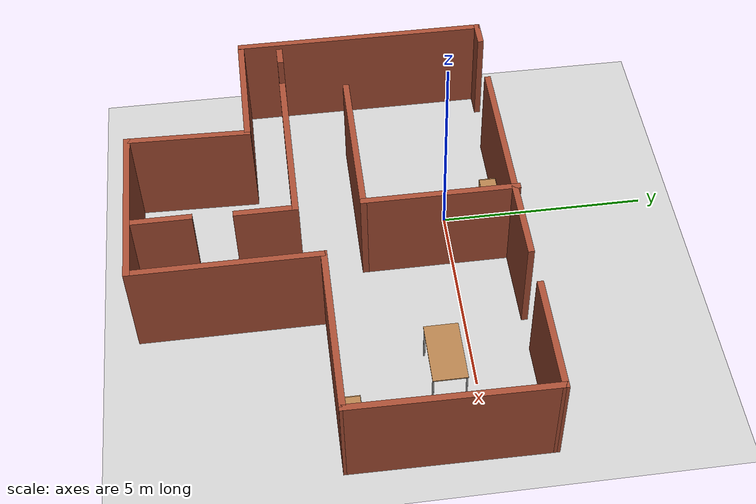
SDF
<sdf version="1.7">
 <world name="default">
  <light name="sun" type="directional">
   <pose>0 0 10 0 -0 0</pose>
   <diffuse>0.8 0.8 0.8 1</diffuse>
   <specular>0.2 0.2 0.2 1</specular>
   <attenuation>
    <range>1000</range>
    <constant>0.9</constant>
    <linear>0.01</linear>
    <quadratic>0.001</quadratic>
   </attenuation>
   <direction>-0.5 0.1 -0.9</direction>
   <spot><inner_angle>0</inner_angle><outer_angle>0</outer_angle><falloff>0</falloff></spot>
  </light>
  <model name="ground_plane">
   <static>1</static>
   <link name="link">
    <collision name="collision">
     <geometry><plane><normal>0 0 1</normal><size>100 100</size></plane></geometry>
     <surface>
      <contact><collide_bitmask>65535</collide_bitmask></contact>
      <friction><ode><mu>100</mu><mu2>50</mu2></ode></friction>
     </surface>
    </collision>
    <visual name="visual">
     <cast_shadows>0</cast_shadows>
     <geometry><plane><normal>0 0 1</normal><size>100 100</size></plane></geometry>
     <material>
      <script><uri>file://media/materials/scripts/gazebo.material</uri><name>Gazebo/Grey</name></script>
     </material>
    </visual>
   </link>
  </model>
  <gravity>0 0 -9.8</gravity>
  <magnetic_field>6e-06 2.3e-05 -4.2e-05</magnetic_field>
  <atmosphere type="adiabatic"/>
  <physics type="ode">
   <max_step_size>0.001</max_step_size>
   <real_time_factor>1</real_time_factor>
   <real_time_update_rate>1000</real_time_update_rate>
  </physics>
  <scene><ambient>0.4 0.4 0.4 1</ambient><background>0.7 0.7 0.7 1</background><shadows>1</shadows></scene>
  <audio><device>default</device></audio>
  <spherical_coordinates>
   <surface_model>EARTH_WGS84</surface_model>
   <latitude_deg>0</latitude_deg>
   <longitude_deg>0</longitude_deg>
   <elevation>0</elevation>
   <heading_deg>0</heading_deg>
  </spherical_coordinates>
  <model name="my_floor">
   <pose>1.30399 -3.02242 0 0 -0 0</pose>
   <link name="Wall_14">
    <collision name="Wall_14_Collision">
     <geometry><box><size>3 0.15 2.5</size></box></geometry>
     <pose>0 0 1.25 0 -0 0</pose>
    </collision>
    <visual name="Wall_14_Visual">
     <pose>0 0 1.25 0 -0 0</pose>
     <geometry><box><size>3 0.15 2.5</size></box></geometry>
     <material>
      <script><uri>file://media/materials/scripts/gazebo.material</uri><name>Gazebo/Bricks</name></script>
      <ambient>1 1 1 1</ambient>
     </material>
     <meta><layer>0</layer></meta>
    </visual>
    <pose>-4.04561 -1.61678 0 0 -0 0</pose>
   </link>
   <link name="Wall_15">
    <collision name="Wall_15_Collision">
     <geometry><box><size>3.02844 0.15 2.5</size></box></geometry>
     <pose>0 0 1.25 0 -0 0</pose>
    </collision>
    <visual name="Wall_15_Visual">
     <pose>0 0 1.25 0 -0 0</pose>
     <geometry><box><size>3.02844 0.15 2.5</size></box></geometry>
     <material>
      <script><uri>file://media/materials/scripts/gazebo.material</uri><name>Gazebo/Bricks</name></script>
      <ambient>1 1 1 1</ambient>
     </material>
     <meta><layer>0</layer></meta>
    </visual>
    <pose>-2.5797 -3.05542 0 0 -0 -1.59923</pose>
   </link>
   <link name="Wall_16">
    <collision name="Wall_16_Collision">
     <geometry><box><size>4.25 0.15 2.5</size></box></geometry>
     <pose>0 0 1.25 0 -0 0</pose>
    </collision>
    <visual name="Wall_16_Visual">
     <pose>0 0 1.25 0 -0 0</pose>
     <geometry><box><size>4.25 0.15 2.5</size></box></geometry>
     <material>
      <script><uri>file://media/materials/scripts/gazebo.material</uri><name>Gazebo/Bricks</name></script>
      <ambient>1 1 1 1</ambient>
     </material>
     <meta><layer>0</layer></meta>
    </visual>
    <pose>-0.570615 -4.49406 0 0 -0 0</pose>
   </link>
   <link name="Wall_17">
    <collision name="Wall_17_Collision">
     <geometry><box><size>4.5 0.15 2.5</size></box></geometry>
     <pose>0 0 1.25 0 -0 0</pose>
    </collision>
    <visual name="Wall_17_Visual">
     <pose>0 0 1.25 0 -0 0</pose>
     <geometry><box><size>4.5 0.15 2.5</size></box></geometry>
     <material>
      <script><uri>file://media/materials/scripts/gazebo.material</uri><name>Gazebo/Bricks</name></script>
      <ambient>1 1 1 1</ambient>
     </material>
     <meta><layer>0</layer></meta>
    </visual>
    <pose>1.47938 -2.31906 0 0 -0 1.5708</pose>
   </link>
   <link name="Wall_18">
    <collision name="Wall_18_Collision">
     <geometry><box><size>4.25 0.15 2.5</size></box></geometry>
     <pose>0 0 1.25 0 -0 0</pose>
    </collision>
    <visual name="Wall_18_Visual">
     <pose>0 0 1.25 0 -0 0</pose>
     <geometry><box><size>4.25 0.15 2.5</size></box></geometry>
     <material>
      <script><uri>file://media/materials/scripts/gazebo.material</uri><name>Gazebo/Bricks</name></script>
      <ambient>1 1 1 1</ambient>
     </material>
     <meta><layer>0</layer></meta>
    </visual>
    <pose>3.52938 -0.144063 0 0 -0 0</pose>
   </link>
   <link name="Wall_19">
    <collision name="Wall_19_Collision">
     <geometry><box><size>4.75027 0.15 2.5</size></box></geometry>
     <pose>0 0 1.25 0 -0 0</pose>
    </collision>
    <visual name="Wall_19_Visual">
     <pose>0 0 1.25 0 -0 0</pose>
     <geometry><box><size>4.75027 0.15 2.5</size></box></geometry>
     <material>
      <script><uri>file://media/materials/scripts/gazebo.material</uri><name>Gazebo/Bricks</name></script>
      <ambient>1 1 1 1</ambient>
     </material>
     <meta><layer>0</layer></meta>
    </visual>
    <pose>5.60438 2.15594 0 0 -0 1.55993</pose>
   </link>
   <link name="Wall_23">
    <collision name="Wall_23_Collision">
     <geometry><box><size>3.75 0.15 2.5</size></box></geometry>
     <pose>0 0 1.25 0 -0 0</pose>
    </collision>
    <visual name="Wall_23_Visual">
     <pose>0 0 1.25 0 -0 0</pose>
     <geometry><box><size>3.75 0.15 2.5</size></box></geometry>
     <material>
      <script><uri>file://media/materials/scripts/gazebo.material</uri><name>Gazebo/Bricks</name></script>
      <ambient>1 1 1 1</ambient>
     </material>
     <meta><layer>0</layer></meta>
    </visual>
    <pose>0.037812 2.69617 0 0 -0 -1.5708</pose>
   </link>
   <link name="Wall_24">
    <collision name="Wall_24_Collision">
     <geometry><box><size>4 0.15 2.5</size></box></geometry>
     <pose>0 0 1.25 0 -0 0</pose>
    </collision>
    <visual name="Wall_24_Visual">
     <pose>0 0 1.25 0 -0 0</pose>
     <geometry><box><size>4 0.15 2.5</size></box></geometry>
     <material>
      <script><uri>file://media/materials/scripts/gazebo.material</uri><name>Gazebo/Bricks</name></script>
      <ambient>1 1 1 1</ambient>
     </material>
     <meta><layer>0</layer></meta>
    </visual>
    <pose>-1.88719 0.896165 0 0 -0 3.14159</pose>
   </link>
   <link name="Wall_26">
    <collision name="Wall_26_Collision">
     <geometry><box><size>0.5 0.15 2.5</size></box></geometry>
     <pose>0 0 1.25 0 -0 0</pose>
    </collision>
    <visual name="Wall_26_Visual">
     <pose>0 0 1.25 0 -0 0</pose>
     <geometry><box><size>0.5 0.15 2.5</size></box></geometry>
     <material>
      <script><uri>file://media/materials/scripts/gazebo.material</uri><name>Gazebo/Bricks</name></script>
      <ambient>1 1 1 1</ambient>
     </material>
     <meta><layer>0</layer></meta>
    </visual>
    <pose>-5.16558 -0.65291 0 0 -0 3.14159</pose>
   </link>
   <link name="Wall_34">
    <collision name="Wall_34_Collision">
     <geometry><box><size>1.5 0.15 2.5</size></box></geometry>
     <pose>0 0 1.25 0 -0 0</pose>
    </collision>
    <visual name="Wall_34_Visual">
     <pose>0 0 1.25 0 -0 0</pose>
     <geometry><box><size>1.5 0.15 2.5</size></box></geometry>
     <material>
      <script><uri>file://media/materials/scripts/gazebo.material</uri><name>Gazebo/Bricks</name></script>
      <ambient>1 1 1 1</ambient>
     </material>
     <meta><layer>0</layer></meta>
    </visual>
    <pose>-0.002415 -3.75926 0 0 -0 1.5708</pose>
   </link>
   <link name="Wall_44">
    <collision name="Wall_44_Collision">
     <geometry><box><size>6.25 0.15 2.5</size></box></geometry>
     <pose>0 0 1.25 0 -0 0</pose>
    </collision>
    <visual name="Wall_44_Visual">
     <pose>0 0 1.25 0 -0 0</pose>
     <geometry><box><size>6.25 0.15 2.5</size></box></geometry>
     <material>
      <script><uri>file://media/materials/scripts/gazebo.material</uri><name>Gazebo/Bricks</name></script>
      <ambient>1 1 1 1</ambient>
     </material>
     <meta><layer>0</layer></meta>
    </visual>
    <pose>-5.62988 1.43765 0 0 -0 -1.5708</pose>
   </link>
   <link name="Wall_47">
    <collision name="Wall_47_Collision">
     <geometry><box><size>5.75 0.15 2.5</size></box></geometry>
     <pose>0 0 1.25 0 -0 0</pose>
    </collision>
    <visual name="Wall_47_Visual">
     <pose>0 0 1.25 0 -0 0</pose>
     <geometry><box><size>5.75 0.15 2.5</size></box></geometry>
     <material>
      <script><uri>file://media/materials/scripts/gazebo.material</uri><name>Gazebo/Bricks</name></script>
      <ambient>1 1 1 1</ambient>
     </material>
     <meta><layer>0</layer></meta>
    </visual>
    <pose>-0.832237 4.43534 0 0 -0 0</pose>
   </link>
   <link name="Wall_49">
    <collision name="Wall_49_Collision">
     <geometry><box><size>2.81046 0.15 2.5</size></box></geometry>
     <pose>0 0 1.25 0 -0 0</pose>
    </collision>
    <visual name="Wall_49_Visual">
     <pose>0 0 1.25 0 -0 0</pose>
     <geometry><box><size>2.81046 0.15 2.5</size></box></geometry>
     <material>
      <script><uri>file://media/materials/scripts/gazebo.material</uri><name>Gazebo/Bricks</name></script>
      <ambient>1 1 1 1</ambient>
     </material>
     <meta><layer>0</layer></meta>
    </visual>
    <pose>4.29916 4.45928 0 0 -0 -0.00251</pose>
   </link>
   <link name="Wall_51">
    <collision name="Wall_51_Collision">
     <geometry><box><size>0.674655 0.15 2.5</size></box></geometry>
     <pose>0 0 1.25 0 -0 0</pose>
    </collision>
    <visual name="Wall_51_Visual">
     <pose>0 0 1.25 0 -0 0</pose>
     <geometry><box><size>0.674655 0.15 2.5</size></box></geometry>
     <material>
      <script><uri>file://media/materials/scripts/gazebo.material</uri><name>Gazebo/Bricks</name></script>
      <ambient>1 1 1 1</ambient>
     </material>
     <meta><layer>0</layer></meta>
    </visual>
    <pose>-5.36755 4.48877 0 0 -0 -3.13732</pose>
   </link>
   <link name="Wall_53">
    <collision name="Wall_53_Collision">
     <geometry><box><size>4.25 0.15 2.5</size></box></geometry>
     <pose>0 0 1.25 0 -0 0</pose>
    </collision>
    <visual name="Wall_53_Visual">
     <pose>0 0 1.25 0 -0 0</pose>
     <geometry><box><size>4.25 0.15 2.5</size></box></geometry>
     <material>
      <script><uri>file://media/materials/scripts/gazebo.material</uri><name>Gazebo/Bricks</name></script>
      <ambient>1 1 1 1</ambient>
     </material>
     <meta><layer>0</layer></meta>
    </visual>
    <pose>-2.01868 -0.665566 0 0 -0 0</pose>
   </link>
   <link name="Wall_54">
    <collision name="Wall_54_Collision">
     <geometry><box><size>1.5 0.15 2.5</size></box></geometry>
     <pose>0 0 1.25 0 -0 0</pose>
    </collision>
    <visual name="Wall_54_Visual">
     <pose>0 0 1.25 0 -0 0</pose>
     <geometry><box><size>1.5 0.15 2.5</size></box></geometry>
     <material>
      <script><uri>file://media/materials/scripts/gazebo.material</uri><name>Gazebo/Bricks</name></script>
      <ambient>1 1 1 1</ambient>
     </material>
     <meta><layer>0</layer></meta>
    </visual>
    <pose>0.031322 -1.34057 0 0 -0 -1.5708</pose>
   </link>
   <static>1</static>
  </model>
  <model name="bookshelf">
   <static>1</static>
   <link name="link">
    <inertial><mass>1</mass></inertial>
    <collision name="back">
     <pose>0 0.005 0.6 0 -0 0</pose>
     <geometry><box><size>0.9 0.01 1.2</size></box></geometry>
    </collision>
    <visual name="visual1">
     <pose>0 0.005 0.6 0 -0 0</pose>
     <geometry><box><size>0.9 0.01 1.2</size></box></geometry>
     <material>
      <script><uri>file://media/materials/scripts/gazebo.material</uri><name>Gazebo/Wood</name></script>
     </material>
    </visual>
    <collision name="left_side">
     <pose>0.45 -0.195 0.6 0 -0 0</pose>
     <geometry><box><size>0.02 0.4 1.2</size></box></geometry>
    </collision>
    <visual name="visual2">
     <pose>0.45 -0.195 0.6 0 -0 0</pose>
     <geometry><box><size>0.02 0.4 1.2</size></box></geometry>
     <material>
      <script><uri>file://media/materials/scripts/gazebo.material</uri><name>Gazebo/Wood</name></script>
     </material>
    </visual>
    <collision name="right_side">
     <pose>-0.45 -0.195 0.6 0 -0 0</pose>
     <geometry><box><size>0.02 0.4 1.2</size></box></geometry>
    </collision>
    <visual name="visual3">
     <pose>-0.45 -0.195 0.6 0 -0 0</pose>
     <geometry><box><size>0.02 0.4 1.2</size></box></geometry>
     <material>
      <script><uri>file://media/materials/scripts/gazebo.material</uri><name>Gazebo/Wood</name></script>
     </material>
    </visual>
    <collision name="bottom">
     <pose>0 -0.195 0.03 0 -0 0</pose>
     <geometry><box><size>0.88 0.4 0.06</size></box></geometry>
    </collision>
    <visual name="visual4">
     <pose>0 -0.195 0.03 0 -0 0</pose>
     <geometry><box><size>0.88 0.4 0.06</size></box></geometry>
     <material>
      <script><uri>file://media/materials/scripts/gazebo.material</uri><name>Gazebo/Wood</name></script>
     </material>
    </visual>
    <collision name="top">
     <pose>0 -0.195 1.19 0 -0 0</pose>
     <geometry><box><size>0.88 0.4 0.02</size></box></geometry>
    </collision>
    <visual name="visual5">
     <pose>0 -0.195 1.19 0 -0 0</pose>
     <geometry><box><size>0.88 0.4 0.02</size></box></geometry>
     <material>
      <script><uri>file://media/materials/scripts/gazebo.material</uri><name>Gazebo/Wood</name></script>
     </material>
    </visual>
    <collision name="low_shelf">
     <pose>0 -0.195 0.43 0 -0 0</pose>
     <geometry><box><size>0.88 0.4 0.02</size></box></geometry>
    </collision>
    <visual name="visual6">
     <pose>0 -0.195 0.43 0 -0 0</pose>
     <geometry><box><size>0.88 0.4 0.02</size></box></geometry>
     <material>
      <script><uri>file://media/materials/scripts/gazebo.material</uri><name>Gazebo/Wood</name></script>
     </material>
    </visual>
    <collision name="high_shelf">
     <pose>0 -0.195 0.8 0 -0 0</pose>
     <geometry><box><size>0.88 0.4 0.02</size></box></geometry>
    </collision>
    <visual name="visual7">
     <pose>0 -0.195 0.8 0 -0 0</pose>
     <geometry><box><size>0.88 0.4 0.02</size></box></geometry>
     <material>
      <script><uri>file://media/materials/scripts/gazebo.material</uri><name>Gazebo/Wood</name></script>
     </material>
    </visual>
   </link>
   <pose>0.306951 1.26753 0 0 -0 0</pose>
  </model>
  <model name="bookshelf_0">
   <static>1</static>
   <link name="link">
    <inertial><mass>1</mass></inertial>
    <collision name="back">
     <pose>0 0.005 0.6 0 -0 0</pose>
     <geometry><box><size>0.9 0.01 1.2</size></box></geometry>
    </collision>
    <visual name="visual1">
     <pose>0 0.005 0.6 0 -0 0</pose>
     <geometry><box><size>0.9 0.01 1.2</size></box></geometry>
     <material>
      <script><uri>file://media/materials/scripts/gazebo.material</uri><name>Gazebo/Wood</name></script>
     </material>
    </visual>
    <collision name="left_side">
     <pose>0.45 -0.195 0.6 0 -0 0</pose>
     <geometry><box><size>0.02 0.4 1.2</size></box></geometry>
    </collision>
    <visual name="visual2">
     <pose>0.45 -0.195 0.6 0 -0 0</pose>
     <geometry><box><size>0.02 0.4 1.2</size></box></geometry>
     <material>
      <script><uri>file://media/materials/scripts/gazebo.material</uri><name>Gazebo/Wood</name></script>
     </material>
    </visual>
    <collision name="right_side">
     <pose>-0.45 -0.195 0.6 0 -0 0</pose>
     <geometry><box><size>0.02 0.4 1.2</size></box></geometry>
    </collision>
    <visual name="visual3">
     <pose>-0.45 -0.195 0.6 0 -0 0</pose>
     <geometry><box><size>0.02 0.4 1.2</size></box></geometry>
     <material>
      <script><uri>file://media/materials/scripts/gazebo.material</uri><name>Gazebo/Wood</name></script>
     </material>
    </visual>
    <collision name="bottom">
     <pose>0 -0.195 0.03 0 -0 0</pose>
     <geometry><box><size>0.88 0.4 0.06</size></box></geometry>
    </collision>
    <visual name="visual4">
     <pose>0 -0.195 0.03 0 -0 0</pose>
     <geometry><box><size>0.88 0.4 0.06</size></box></geometry>
     <material>
      <script><uri>file://media/materials/scripts/gazebo.material</uri><name>Gazebo/Wood</name></script>
     </material>
    </visual>
    <collision name="top">
     <pose>0 -0.195 1.19 0 -0 0</pose>
     <geometry><box><size>0.88 0.4 0.02</size></box></geometry>
    </collision>
    <visual name="visual5">
     <pose>0 -0.195 1.19 0 -0 0</pose>
     <geometry><box><size>0.88 0.4 0.02</size></box></geometry>
     <material>
      <script><uri>file://media/materials/scripts/gazebo.material</uri><name>Gazebo/Wood</name></script>
     </material>
    </visual>
    <collision name="low_shelf">
     <pose>0 -0.195 0.43 0 -0 0</pose>
     <geometry><box><size>0.88 0.4 0.02</size></box></geometry>
    </collision>
    <visual name="visual6">
     <pose>0 -0.195 0.43 0 -0 0</pose>
     <geometry><box><size>0.88 0.4 0.02</size></box></geometry>
     <material>
      <script><uri>file://media/materials/scripts/gazebo.material</uri><name>Gazebo/Wood</name></script>
     </material>
    </visual>
    <collision name="high_shelf">
     <pose>0 -0.195 0.8 0 -0 0</pose>
     <geometry><box><size>0.88 0.4 0.02</size></box></geometry>
    </collision>
    <visual name="visual7">
     <pose>0 -0.195 0.8 0 -0 0</pose>
     <geometry><box><size>0.88 0.4 0.02</size></box></geometry>
     <material>
      <script><uri>file://media/materials/scripts/gazebo.material</uri><name>Gazebo/Wood</name></script>
     </material>
    </visual>
   </link>
   <pose>6.22035 -2.7202 0 0 -0 0</pose>
  </model>
  <model name="table">
   <static>1</static>
   <link name="link">
    <collision name="surface">
     <pose>0 0 1 0 -0 0</pose>
     <geometry><box><size>1.5 0.8 0.03</size></box></geometry>
     <surface><friction><ode><mu>0.6</mu><mu2>0.6</mu2></ode></friction></surface>
    </collision>
    <visual name="visual1">
     <pose>0 0 1 0 -0 0</pose>
     <geometry><box><size>1.5 0.8 0.03</size></box></geometry>
     <material>
      <script><uri>file://media/materials/scripts/gazebo.material</uri><name>Gazebo/Wood</name></script>
     </material>
    </visual>
    <collision name="front_left_leg">
     <pose>0.68 0.38 0.5 0 -0 0</pose>
     <geometry><cylinder><radius>0.02</radius><length>1</length></cylinder></geometry>
    </collision>
    <visual name="front_left_leg">
     <pose>0.68 0.38 0.5 0 -0 0</pose>
     <geometry><cylinder><radius>0.02</radius><length>1</length></cylinder></geometry>
     <material>
      <script><uri>file://media/materials/scripts/gazebo.material</uri><name>Gazebo/Grey</name></script>
     </material>
    </visual>
    <collision name="front_right_leg">
     <pose>0.68 -0.38 0.5 0 -0 0</pose>
     <geometry><cylinder><radius>0.02</radius><length>1</length></cylinder></geometry>
    </collision>
    <visual name="front_right_leg">
     <pose>0.68 -0.38 0.5 0 -0 0</pose>
     <geometry><cylinder><radius>0.02</radius><length>1</length></cylinder></geometry>
     <material>
      <script><uri>file://media/materials/scripts/gazebo.material</uri><name>Gazebo/Grey</name></script>
     </material>
    </visual>
    <collision name="back_right_leg">
     <pose>-0.68 -0.38 0.5 0 -0 0</pose>
     <geometry><cylinder><radius>0.02</radius><length>1</length></cylinder></geometry>
    </collision>
    <visual name="back_right_leg">
     <pose>-0.68 -0.38 0.5 0 -0 0</pose>
     <geometry><cylinder><radius>0.02</radius><length>1</length></cylinder></geometry>
     <material>
      <script><uri>file://media/materials/scripts/gazebo.material</uri><name>Gazebo/Grey</name></script>
     </material>
    </visual>
    <collision name="back_left_leg">
     <pose>-0.68 0.38 0.5 0 -0 0</pose>
     <geometry><cylinder><radius>0.02</radius><length>1</length></cylinder></geometry>
    </collision>
    <visual name="back_left_leg">
     <pose>-0.68 0.38 0.5 0 -0 0</pose>
     <geometry><cylinder><radius>0.02</radius><length>1</length></cylinder></geometry>
     <material>
      <script><uri>file://media/materials/scripts/gazebo.material</uri><name>Gazebo/Grey</name></script>
     </material>
    </visual>
   </link>
   <pose>4.7347 -0.695682 0 0 -0 0</pose>
  </model>
 </world>
</sdf>
